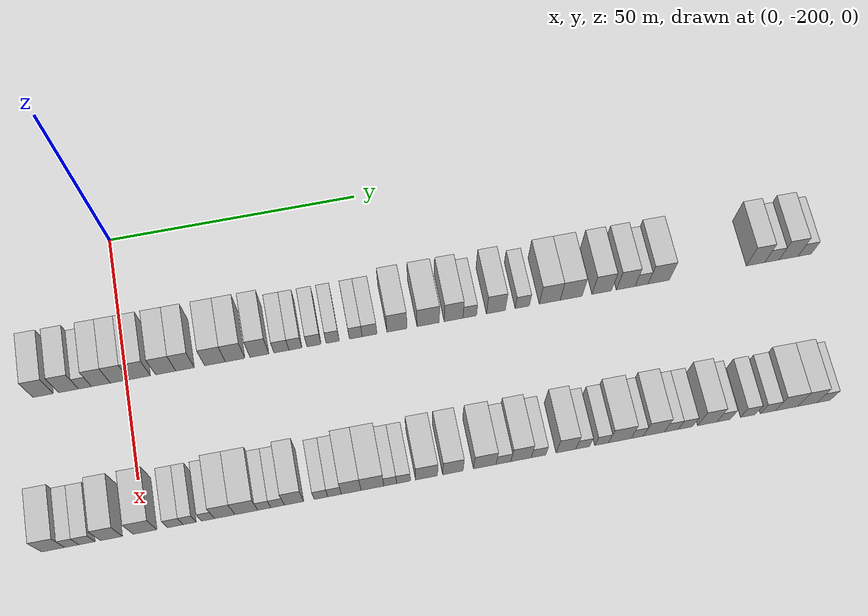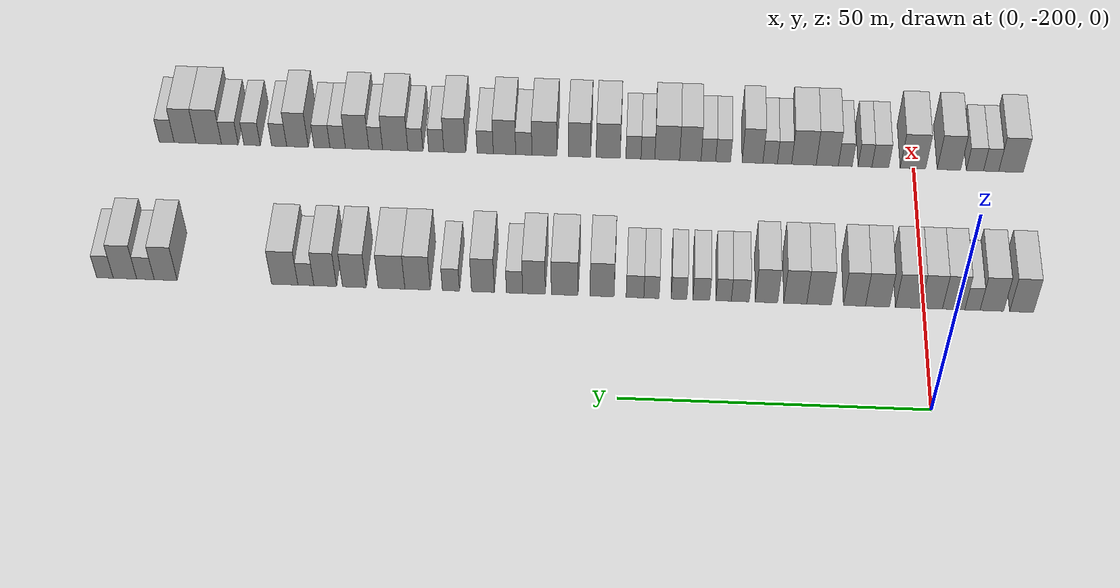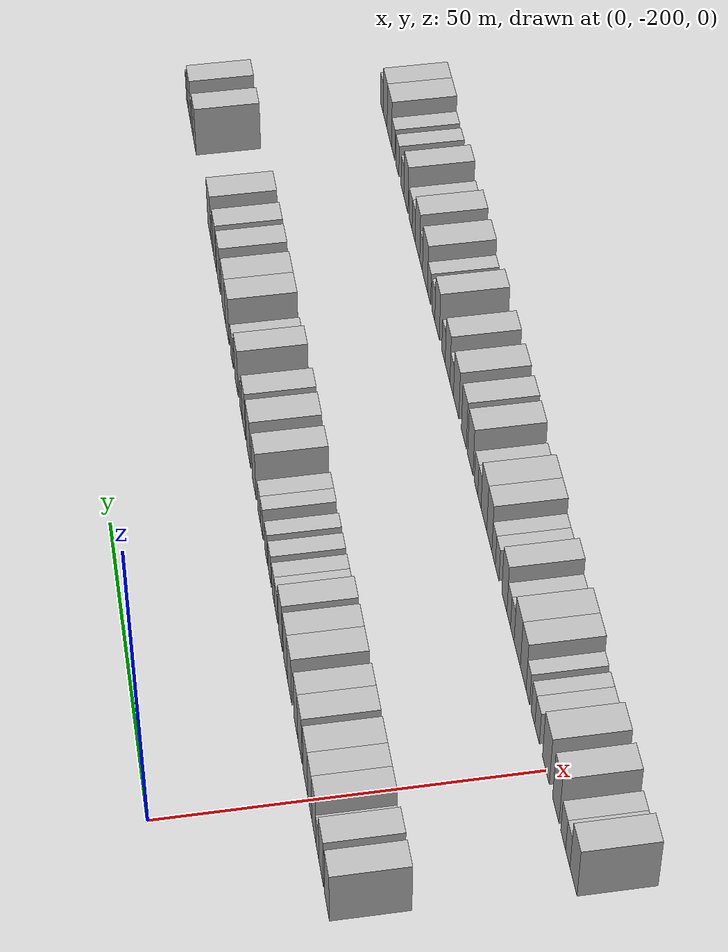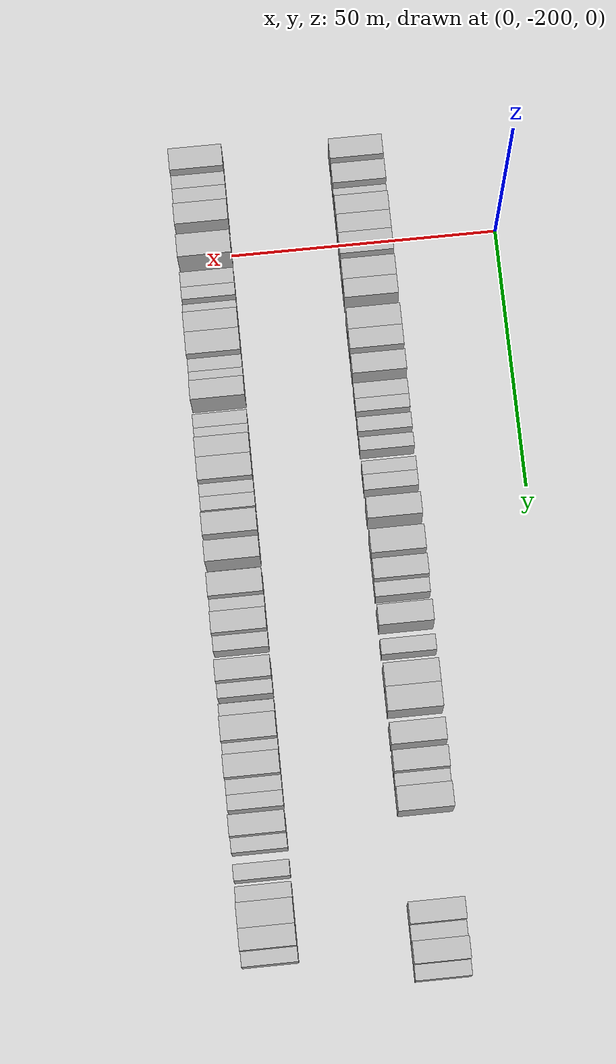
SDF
<sdf version="1.6">
 <world name="default">
  <model name="building_1">
   <static>1</static>
   <pose>25.0000 -216.0419 0 0.000000 0.000000 0.000000</pose>
   <link name="link">
    <pose>0 0 4.50 0 0 0</pose>
    <collision name="collision"><geometry><box><size>10.0000 3.9163 9.0000</size></box></geometry></collision>
    <visual name="visual">
     <cast_shadows>0</cast_shadows>
     <geometry><box><size>10.0000 3.9163 9.0000</size></box></geometry>
     <material>
      <script>
       <uri>model://HANNAS_wall/materials/scripts</uri>
       <uri>model://HANNAS_wall/materials/textures</uri>
       <name>vrc/HANNAS_wall</name>
      </script>
     </material>
    </visual>
   </link>
  </model>
  <model name="building_2">
   <static>1</static>
   <pose>25.0000 -211.1497 0 0.000000 0.000000 0.000000</pose>
   <link name="link">
    <pose>0 0 4.50 0 0 0</pose>
    <collision name="collision"><geometry><box><size>10.0000 3.8681 9.0000</size></box></geometry></collision>
    <visual name="visual">
     <cast_shadows>0</cast_shadows>
     <geometry><box><size>10.0000 3.8681 9.0000</size></box></geometry>
     <material>
      <script>
       <uri>model://HANNAS_wall/materials/scripts</uri>
       <uri>model://HANNAS_wall/materials/textures</uri>
       <name>vrc/HANNAS_wall</name>
      </script>
     </material>
    </visual>
   </link>
  </model>
  <model name="building_3">
   <static>1</static>
   <pose>25.0000 -207.9649 0 0.000000 0.000000 0.000000</pose>
   <link name="link">
    <pose>0 0 3.00 0 0 0</pose>
    <collision name="collision"><geometry><box><size>10.0000 2.5015 6.0000</size></box></geometry></collision>
    <visual name="visual">
     <cast_shadows>0</cast_shadows>
     <geometry><box><size>10.0000 2.5015 6.0000</size></box></geometry>
     <material>
      <script>
       <uri>model://HANNAS_wall/materials/scripts</uri>
       <uri>model://HANNAS_wall/materials/textures</uri>
       <name>vrc/HANNAS_wall</name>
      </script>
     </material>
    </visual>
   </link>
  </model>
  <model name="building_4">
   <static>1</static>
   <pose>25.0000 -204.8783 0 0.000000 0.000000 0.000000</pose>
   <link name="link">
    <pose>0 0 4.50 0 0 0</pose>
    <collision name="collision"><geometry><box><size>10.0000 3.6717 9.0000</size></box></geometry></collision>
    <visual name="visual">
     <cast_shadows>0</cast_shadows>
     <geometry><box><size>10.0000 3.6717 9.0000</size></box></geometry>
     <material>
      <script>
       <uri>model://HANNAS_wall/materials/scripts</uri>
       <uri>model://HANNAS_wall/materials/textures</uri>
       <name>vrc/HANNAS_wall</name>
      </script>
     </material>
    </visual>
   </link>
  </model>
  <model name="building_5">
   <static>1</static>
   <pose>25.0000 -201.2408 0 0.000000 0.000000 0.000000</pose>
   <link name="link">
    <pose>0 0 4.50 0 0 0</pose>
    <collision name="collision"><geometry><box><size>10.0000 3.6034 9.0000</size></box></geometry></collision>
    <visual name="visual">
     <cast_shadows>0</cast_shadows>
     <geometry><box><size>10.0000 3.6034 9.0000</size></box></geometry>
     <material>
      <script>
       <uri>model://HANNAS_wall/materials/scripts</uri>
       <uri>model://HANNAS_wall/materials/textures</uri>
       <name>vrc/HANNAS_wall</name>
      </script>
     </material>
    </visual>
   </link>
  </model>
  <model name="building_6">
   <static>1</static>
   <pose>25.0000 -197.3695 0 0.000000 0.000000 0.000000</pose>
   <link name="link">
    <pose>0 0 4.50 0 0 0</pose>
    <collision name="collision"><geometry><box><size>10.0000 4.1391 9.0000</size></box></geometry></collision>
    <visual name="visual">
     <cast_shadows>0</cast_shadows>
     <geometry><box><size>10.0000 4.1391 9.0000</size></box></geometry>
     <material>
      <script>
       <uri>model://HANNAS_wall/materials/scripts</uri>
       <uri>model://HANNAS_wall/materials/textures</uri>
       <name>vrc/HANNAS_wall</name>
      </script>
     </material>
    </visual>
   </link>
  </model>
  <model name="building_7">
   <static>1</static>
   <pose>25.0000 -192.3266 0 0.000000 0.000000 0.000000</pose>
   <link name="link">
    <pose>0 0 4.50 0 0 0</pose>
    <collision name="collision"><geometry><box><size>10.0000 3.9469 9.0000</size></box></geometry></collision>
    <visual name="visual">
     <cast_shadows>0</cast_shadows>
     <geometry><box><size>10.0000 3.9469 9.0000</size></box></geometry>
     <material>
      <script>
       <uri>model://HANNAS_wall/materials/scripts</uri>
       <uri>model://HANNAS_wall/materials/textures</uri>
       <name>vrc/HANNAS_wall</name>
      </script>
     </material>
    </visual>
   </link>
  </model>
  <model name="building_8">
   <static>1</static>
   <pose>25.0000 -188.5478 0 0.000000 0.000000 0.000000</pose>
   <link name="link">
    <pose>0 0 4.50 0 0 0</pose>
    <collision name="collision"><geometry><box><size>10.0000 3.6106 9.0000</size></box></geometry></collision>
    <visual name="visual">
     <cast_shadows>0</cast_shadows>
     <geometry><box><size>10.0000 3.6106 9.0000</size></box></geometry>
     <material>
      <script>
       <uri>model://HANNAS_wall/materials/scripts</uri>
       <uri>model://HANNAS_wall/materials/textures</uri>
       <name>vrc/HANNAS_wall</name>
      </script>
     </material>
    </visual>
   </link>
  </model>
  <model name="building_9">
   <static>1</static>
   <pose>25.0000 -182.7018 0 0.000000 0.000000 0.000000</pose>
   <link name="link">
    <pose>0 0 4.50 0 0 0</pose>
    <collision name="collision"><geometry><box><size>10.0000 4.0816 9.0000</size></box></geometry></collision>
    <visual name="visual">
     <cast_shadows>0</cast_shadows>
     <geometry><box><size>10.0000 4.0816 9.0000</size></box></geometry>
     <material>
      <script>
       <uri>model://HANNAS_wall/materials/scripts</uri>
       <uri>model://HANNAS_wall/materials/textures</uri>
       <name>vrc/HANNAS_wall</name>
      </script>
     </material>
    </visual>
   </link>
  </model>
  <model name="building_10">
   <static>1</static>
   <pose>25.0000 -178.7619 0 0.000000 0.000000 0.000000</pose>
   <link name="link">
    <pose>0 0 4.50 0 0 0</pose>
    <collision name="collision"><geometry><box><size>10.0000 3.7982 9.0000</size></box></geometry></collision>
    <visual name="visual">
     <cast_shadows>0</cast_shadows>
     <geometry><box><size>10.0000 3.7982 9.0000</size></box></geometry>
     <material>
      <script>
       <uri>model://HANNAS_wall/materials/scripts</uri>
       <uri>model://HANNAS_wall/materials/textures</uri>
       <name>vrc/HANNAS_wall</name>
      </script>
     </material>
    </visual>
   </link>
  </model>
  <model name="building_11">
   <static>1</static>
   <pose>25.0000 -174.0061 0 0.000000 0.000000 0.000000</pose>
   <link name="link">
    <pose>0 0 4.50 0 0 0</pose>
    <collision name="collision"><geometry><box><size>10.0000 3.7134 9.0000</size></box></geometry></collision>
    <visual name="visual">
     <cast_shadows>0</cast_shadows>
     <geometry><box><size>10.0000 3.7134 9.0000</size></box></geometry>
     <material>
      <script>
       <uri>model://HANNAS_wall/materials/scripts</uri>
       <uri>model://HANNAS_wall/materials/textures</uri>
       <name>vrc/HANNAS_wall</name>
      </script>
     </material>
    </visual>
   </link>
  </model>
  <model name="building_12">
   <static>1</static>
   <pose>25.0000 -169.6747 0 0.000000 0.000000 0.000000</pose>
   <link name="link">
    <pose>0 0 3.00 0 0 0</pose>
    <collision name="collision"><geometry><box><size>10.0000 2.9493 6.0000</size></box></geometry></collision>
    <visual name="visual">
     <cast_shadows>0</cast_shadows>
     <geometry><box><size>10.0000 2.9493 6.0000</size></box></geometry>
     <material>
      <script>
       <uri>model://HANNAS_wall/materials/scripts</uri>
       <uri>model://HANNAS_wall/materials/textures</uri>
       <name>vrc/HANNAS_wall</name>
      </script>
     </material>
    </visual>
   </link>
  </model>
  <model name="building_13">
   <static>1</static>
   <pose>25.0000 -166.9176 0 0.000000 0.000000 0.000000</pose>
   <link name="link">
    <pose>0 0 3.00 0 0 0</pose>
    <collision name="collision"><geometry><box><size>10.0000 2.5648 6.0000</size></box></geometry></collision>
    <visual name="visual">
     <cast_shadows>0</cast_shadows>
     <geometry><box><size>10.0000 2.5648 6.0000</size></box></geometry>
     <material>
      <script>
       <uri>model://HANNAS_wall/materials/scripts</uri>
       <uri>model://HANNAS_wall/materials/textures</uri>
       <name>vrc/HANNAS_wall</name>
      </script>
     </material>
    </visual>
   </link>
  </model>
  <model name="building_14">
   <static>1</static>
   <pose>25.0000 -163.2379 0 0.000000 0.000000 0.000000</pose>
   <link name="link">
    <pose>0 0 3.00 0 0 0</pose>
    <collision name="collision"><geometry><box><size>10.0000 2.7948 6.0000</size></box></geometry></collision>
    <visual name="visual">
     <cast_shadows>0</cast_shadows>
     <geometry><box><size>10.0000 2.7948 6.0000</size></box></geometry>
     <material>
      <script>
       <uri>model://HANNAS_wall/materials/scripts</uri>
       <uri>model://HANNAS_wall/materials/textures</uri>
       <name>vrc/HANNAS_wall</name>
      </script>
     </material>
    </visual>
   </link>
  </model>
  <model name="building_15">
   <static>1</static>
   <pose>25.0000 -159.5439 0 0.000000 0.000000 0.000000</pose>
   <link name="link">
    <pose>0 0 3.00 0 0 0</pose>
    <collision name="collision"><geometry><box><size>10.0000 2.5931 6.0000</size></box></geometry></collision>
    <visual name="visual">
     <cast_shadows>0</cast_shadows>
     <geometry><box><size>10.0000 2.5931 6.0000</size></box></geometry>
     <material>
      <script>
       <uri>model://HANNAS_wall/materials/scripts</uri>
       <uri>model://HANNAS_wall/materials/textures</uri>
       <name>vrc/HANNAS_wall</name>
      </script>
     </material>
    </visual>
   </link>
  </model>
  <model name="building_16">
   <static>1</static>
   <pose>25.0000 -154.9799 0 0.000000 0.000000 0.000000</pose>
   <link name="link">
    <pose>0 0 3.00 0 0 0</pose>
    <collision name="collision"><geometry><box><size>10.0000 2.5349 6.0000</size></box></geometry></collision>
    <visual name="visual">
     <cast_shadows>0</cast_shadows>
     <geometry><box><size>10.0000 2.5349 6.0000</size></box></geometry>
     <material>
      <script>
       <uri>model://HANNAS_wall/materials/scripts</uri>
       <uri>model://HANNAS_wall/materials/textures</uri>
       <name>vrc/HANNAS_wall</name>
      </script>
     </material>
    </visual>
   </link>
  </model>
  <model name="building_17">
   <static>1</static>
   <pose>25.0000 -152.2463 0 0.000000 0.000000 0.000000</pose>
   <link name="link">
    <pose>0 0 3.00 0 0 0</pose>
    <collision name="collision"><geometry><box><size>10.0000 2.9323 6.0000</size></box></geometry></collision>
    <visual name="visual">
     <cast_shadows>0</cast_shadows>
     <geometry><box><size>10.0000 2.9323 6.0000</size></box></geometry>
     <material>
      <script>
       <uri>model://HANNAS_wall/materials/scripts</uri>
       <uri>model://HANNAS_wall/materials/textures</uri>
       <name>vrc/HANNAS_wall</name>
      </script>
     </material>
    </visual>
   </link>
  </model>
  <model name="building_18">
   <static>1</static>
   <pose>25.0000 -146.7901 0 0.000000 0.000000 0.000000</pose>
   <link name="link">
    <pose>0 0 4.50 0 0 0</pose>
    <collision name="collision"><geometry><box><size>10.0000 3.9801 9.0000</size></box></geometry></collision>
    <visual name="visual">
     <cast_shadows>0</cast_shadows>
     <geometry><box><size>10.0000 3.9801 9.0000</size></box></geometry>
     <material>
      <script>
       <uri>model://HANNAS_wall/materials/scripts</uri>
       <uri>model://HANNAS_wall/materials/textures</uri>
       <name>vrc/HANNAS_wall</name>
      </script>
     </material>
    </visual>
   </link>
  </model>
  <model name="building_19">
   <static>1</static>
   <pose>25.0000 -140.5800 0 0.000000 0.000000 0.000000</pose>
   <link name="link">
    <pose>0 0 4.50 0 0 0</pose>
    <collision name="collision"><geometry><box><size>10.0000 4.4402 9.0000</size></box></geometry></collision>
    <visual name="visual">
     <cast_shadows>0</cast_shadows>
     <geometry><box><size>10.0000 4.4402 9.0000</size></box></geometry>
     <material>
      <script>
       <uri>model://HANNAS_wall/materials/scripts</uri>
       <uri>model://HANNAS_wall/materials/textures</uri>
       <name>vrc/HANNAS_wall</name>
      </script>
     </material>
    </visual>
   </link>
  </model>
  <model name="building_20">
   <static>1</static>
   <pose>25.0000 -135.4775 0 0.000000 0.000000 0.000000</pose>
   <link name="link">
    <pose>0 0 4.50 0 0 0</pose>
    <collision name="collision"><geometry><box><size>10.0000 3.7648 9.0000</size></box></geometry></collision>
    <visual name="visual">
     <cast_shadows>0</cast_shadows>
     <geometry><box><size>10.0000 3.7648 9.0000</size></box></geometry>
     <material>
      <script>
       <uri>model://HANNAS_wall/materials/scripts</uri>
       <uri>model://HANNAS_wall/materials/textures</uri>
       <name>vrc/HANNAS_wall</name>
      </script>
     </material>
    </visual>
   </link>
  </model>
  <model name="building_21">
   <static>1</static>
   <pose>25.0000 -132.2406 0 0.000000 0.000000 0.000000</pose>
   <link name="link">
    <pose>0 0 3.00 0 0 0</pose>
    <collision name="collision"><geometry><box><size>10.0000 2.7090 6.0000</size></box></geometry></collision>
    <visual name="visual">
     <cast_shadows>0</cast_shadows>
     <geometry><box><size>10.0000 2.7090 6.0000</size></box></geometry>
     <material>
      <script>
       <uri>model://HANNAS_wall/materials/scripts</uri>
       <uri>model://HANNAS_wall/materials/textures</uri>
       <name>vrc/HANNAS_wall</name>
      </script>
     </material>
    </visual>
   </link>
  </model>
  <model name="building_22">
   <static>1</static>
   <pose>25.0000 -126.9891 0 0.000000 0.000000 0.000000</pose>
   <link name="link">
    <pose>0 0 4.50 0 0 0</pose>
    <collision name="collision"><geometry><box><size>10.0000 3.7940 9.0000</size></box></geometry></collision>
    <visual name="visual">
     <cast_shadows>0</cast_shadows>
     <geometry><box><size>10.0000 3.7940 9.0000</size></box></geometry>
     <material>
      <script>
       <uri>model://HANNAS_wall/materials/scripts</uri>
       <uri>model://HANNAS_wall/materials/textures</uri>
       <name>vrc/HANNAS_wall</name>
      </script>
     </material>
    </visual>
   </link>
  </model>
  <model name="building_23">
   <static>1</static>
   <pose>25.0000 -121.6589 0 0.000000 0.000000 0.000000</pose>
   <link name="link">
    <pose>0 0 3.00 0 0 0</pose>
    <collision name="collision"><geometry><box><size>10.0000 2.8664 6.0000</size></box></geometry></collision>
    <visual name="visual">
     <cast_shadows>0</cast_shadows>
     <geometry><box><size>10.0000 2.8664 6.0000</size></box></geometry>
     <material>
      <script>
       <uri>model://HANNAS_wall/materials/scripts</uri>
       <uri>model://HANNAS_wall/materials/textures</uri>
       <name>vrc/HANNAS_wall</name>
      </script>
     </material>
    </visual>
   </link>
  </model>
  <model name="building_24">
   <static>1</static>
   <pose>25.0000 -116.0984 0 0.000000 0.000000 0.000000</pose>
   <link name="link">
    <pose>0 0 4.50 0 0 0</pose>
    <collision name="collision"><geometry><box><size>10.0000 4.2546 9.0000</size></box></geometry></collision>
    <visual name="visual">
     <cast_shadows>0</cast_shadows>
     <geometry><box><size>10.0000 4.2546 9.0000</size></box></geometry>
     <material>
      <script>
       <uri>model://HANNAS_wall/materials/scripts</uri>
       <uri>model://HANNAS_wall/materials/textures</uri>
       <name>vrc/HANNAS_wall</name>
      </script>
     </material>
    </visual>
   </link>
  </model>
  <model name="building_25">
   <static>1</static>
   <pose>25.0000 -111.7449 0 0.000000 0.000000 0.000000</pose>
   <link name="link">
    <pose>0 0 4.50 0 0 0</pose>
    <collision name="collision"><geometry><box><size>10.0000 4.4524 9.0000</size></box></geometry></collision>
    <visual name="visual">
     <cast_shadows>0</cast_shadows>
     <geometry><box><size>10.0000 4.4524 9.0000</size></box></geometry>
     <material>
      <script>
       <uri>model://HANNAS_wall/materials/scripts</uri>
       <uri>model://HANNAS_wall/materials/textures</uri>
       <name>vrc/HANNAS_wall</name>
      </script>
     </material>
    </visual>
   </link>
  </model>
  <model name="building_26">
   <static>1</static>
   <pose>25.0000 -105.5380 0 0.000000 0.000000 0.000000</pose>
   <link name="link">
    <pose>0 0 4.50 0 0 0</pose>
    <collision name="collision"><geometry><box><size>10.0000 3.9613 9.0000</size></box></geometry></collision>
    <visual name="visual">
     <cast_shadows>0</cast_shadows>
     <geometry><box><size>10.0000 3.9613 9.0000</size></box></geometry>
     <material>
      <script>
       <uri>model://HANNAS_wall/materials/scripts</uri>
       <uri>model://HANNAS_wall/materials/textures</uri>
       <name>vrc/HANNAS_wall</name>
      </script>
     </material>
    </visual>
   </link>
  </model>
  <model name="building_27">
   <static>1</static>
   <pose>25.0000 -100.6645 0 0.000000 0.000000 0.000000</pose>
   <link name="link">
    <pose>0 0 4.50 0 0 0</pose>
    <collision name="collision"><geometry><box><size>10.0000 3.7857 9.0000</size></box></geometry></collision>
    <visual name="visual">
     <cast_shadows>0</cast_shadows>
     <geometry><box><size>10.0000 3.7857 9.0000</size></box></geometry>
     <material>
      <script>
       <uri>model://HANNAS_wall/materials/scripts</uri>
       <uri>model://HANNAS_wall/materials/textures</uri>
       <name>vrc/HANNAS_wall</name>
      </script>
     </material>
    </visual>
   </link>
  </model>
  <model name="building_28">
   <static>1</static>
   <pose>25.0000 -97.4327 0 0.000000 0.000000 0.000000</pose>
   <link name="link">
    <pose>0 0 3.00 0 0 0</pose>
    <collision name="collision"><geometry><box><size>10.0000 2.6779 6.0000</size></box></geometry></collision>
    <visual name="visual">
     <cast_shadows>0</cast_shadows>
     <geometry><box><size>10.0000 2.6779 6.0000</size></box></geometry>
     <material>
      <script>
       <uri>model://HANNAS_wall/materials/scripts</uri>
       <uri>model://HANNAS_wall/materials/textures</uri>
       <name>vrc/HANNAS_wall</name>
      </script>
     </material>
    </visual>
   </link>
  </model>
  <model name="building_29">
   <static>1</static>
   <pose>25.0000 -93.8877 0 0.000000 0.000000 0.000000</pose>
   <link name="link">
    <pose>0 0 4.50 0 0 0</pose>
    <collision name="collision"><geometry><box><size>10.0000 4.4122 9.0000</size></box></geometry></collision>
    <visual name="visual">
     <cast_shadows>0</cast_shadows>
     <geometry><box><size>10.0000 4.4122 9.0000</size></box></geometry>
     <material>
      <script>
       <uri>model://HANNAS_wall/materials/scripts</uri>
       <uri>model://HANNAS_wall/materials/textures</uri>
       <name>vrc/HANNAS_wall</name>
      </script>
     </material>
    </visual>
   </link>
  </model>
  <model name="building_30">
   <static>1</static>
   <pose>25.0000 -73.9153 0 0.000000 0.000000 0.000000</pose>
   <link name="link">
    <pose>0 0 4.50 0 0 0</pose>
    <collision name="collision"><geometry><box><size>10.0000 3.8442 9.0000</size></box></geometry></collision>
    <visual name="visual">
     <cast_shadows>0</cast_shadows>
     <geometry><box><size>10.0000 3.8442 9.0000</size></box></geometry>
     <material>
      <script>
       <uri>model://HANNAS_wall/materials/scripts</uri>
       <uri>model://HANNAS_wall/materials/textures</uri>
       <name>vrc/HANNAS_wall</name>
      </script>
     </material>
    </visual>
   </link>
  </model>
  <model name="building_31">
   <static>1</static>
   <pose>25.0000 -70.5167 0 0.000000 0.000000 0.000000</pose>
   <link name="link">
    <pose>0 0 3.00 0 0 0</pose>
    <collision name="collision"><geometry><box><size>10.0000 2.9530 6.0000</size></box></geometry></collision>
    <visual name="visual">
     <cast_shadows>0</cast_shadows>
     <geometry><box><size>10.0000 2.9530 6.0000</size></box></geometry>
     <material>
      <script>
       <uri>model://HANNAS_wall/materials/scripts</uri>
       <uri>model://HANNAS_wall/materials/textures</uri>
       <name>vrc/HANNAS_wall</name>
      </script>
     </material>
    </visual>
   </link>
  </model>
  <model name="building_32">
   <static>1</static>
   <pose>25.0000 -67.0699 0 0.000000 0.000000 0.000000</pose>
   <link name="link">
    <pose>0 0 4.50 0 0 0</pose>
    <collision name="collision"><geometry><box><size>10.0000 3.9406 9.0000</size></box></geometry></collision>
    <visual name="visual">
     <cast_shadows>0</cast_shadows>
     <geometry><box><size>10.0000 3.9406 9.0000</size></box></geometry>
     <material>
      <script>
       <uri>model://HANNAS_wall/materials/scripts</uri>
       <uri>model://HANNAS_wall/materials/textures</uri>
       <name>vrc/HANNAS_wall</name>
      </script>
     </material>
    </visual>
   </link>
  </model>
  <model name="building_33">
   <static>1</static>
   <pose>25.0000 -63.7086 0 0.000000 0.000000 0.000000</pose>
   <link name="link">
    <pose>0 0 3.00 0 0 0</pose>
    <collision name="collision"><geometry><box><size>10.0000 2.7819 6.0000</size></box></geometry></collision>
    <visual name="visual">
     <cast_shadows>0</cast_shadows>
     <geometry><box><size>10.0000 2.7819 6.0000</size></box></geometry>
     <material>
      <script>
       <uri>model://HANNAS_wall/materials/scripts</uri>
       <uri>model://HANNAS_wall/materials/textures</uri>
       <name>vrc/HANNAS_wall</name>
      </script>
     </material>
    </visual>
   </link>
  </model>
  <model name="building_110">
   <static>1</static>
   <pose>55.0000 -216.8763 0 0.000000 0.000000 0.000000</pose>
   <link name="link">
    <pose>0 0 4.50 0 0 0</pose>
    <collision name="collision"><geometry><box><size>10.0000 4.2474 9.0000</size></box></geometry></collision>
    <visual name="visual">
     <cast_shadows>0</cast_shadows>
     <geometry><box><size>10.0000 4.2474 9.0000</size></box></geometry>
     <material>
      <script>
       <uri>model://HANNAS_wall/materials/scripts</uri>
       <uri>model://HANNAS_wall/materials/textures</uri>
       <name>vrc/HANNAS_wall</name>
      </script>
     </material>
    </visual>
   </link>
  </model>
  <model name="building_111">
   <static>1</static>
   <pose>55.0000 -213.4412 0 0.000000 0.000000 0.000000</pose>
   <link name="link">
    <pose>0 0 3.00 0 0 0</pose>
    <collision name="collision"><geometry><box><size>10.0000 2.6228 6.0000</size></box></geometry></collision>
    <visual name="visual">
     <cast_shadows>0</cast_shadows>
     <geometry><box><size>10.0000 2.6228 6.0000</size></box></geometry>
     <material>
      <script>
       <uri>model://HANNAS_wall/materials/scripts</uri>
       <uri>model://HANNAS_wall/materials/textures</uri>
       <name>vrc/HANNAS_wall</name>
      </script>
     </material>
    </visual>
   </link>
  </model>
  <model name="building_112">
   <static>1</static>
   <pose>55.0000 -210.6367 0 0.000000 0.000000 0.000000</pose>
   <link name="link">
    <pose>0 0 3.00 0 0 0</pose>
    <collision name="collision"><geometry><box><size>10.0000 2.9863 6.0000</size></box></geometry></collision>
    <visual name="visual">
     <cast_shadows>0</cast_shadows>
     <geometry><box><size>10.0000 2.9863 6.0000</size></box></geometry>
     <material>
      <script>
       <uri>model://HANNAS_wall/materials/scripts</uri>
       <uri>model://HANNAS_wall/materials/textures</uri>
       <name>vrc/HANNAS_wall</name>
      </script>
     </material>
    </visual>
   </link>
  </model>
  <model name="building_113">
   <static>1</static>
   <pose>55.0000 -206.1159 0 0.000000 0.000000 0.000000</pose>
   <link name="link">
    <pose>0 0 4.50 0 0 0</pose>
    <collision name="collision"><geometry><box><size>10.0000 4.0554 9.0000</size></box></geometry></collision>
    <visual name="visual">
     <cast_shadows>0</cast_shadows>
     <geometry><box><size>10.0000 4.0554 9.0000</size></box></geometry>
     <material>
      <script>
       <uri>model://HANNAS_wall/materials/scripts</uri>
       <uri>model://HANNAS_wall/materials/textures</uri>
       <name>vrc/HANNAS_wall</name>
      </script>
     </material>
    </visual>
   </link>
  </model>
  <model name="building_114">
   <static>1</static>
   <pose>55.0000 -199.8830 0 0.000000 0.000000 0.000000</pose>
   <link name="link">
    <pose>0 0 4.50 0 0 0</pose>
    <collision name="collision"><geometry><box><size>10.0000 4.4104 9.0000</size></box></geometry></collision>
    <visual name="visual">
     <cast_shadows>0</cast_shadows>
     <geometry><box><size>10.0000 4.4104 9.0000</size></box></geometry>
     <material>
      <script>
       <uri>model://HANNAS_wall/materials/scripts</uri>
       <uri>model://HANNAS_wall/materials/textures</uri>
       <name>vrc/HANNAS_wall</name>
      </script>
     </material>
    </visual>
   </link>
  </model>
  <model name="building_115">
   <static>1</static>
   <pose>55.0000 -194.2160 0 0.000000 0.000000 0.000000</pose>
   <link name="link">
    <pose>0 0 3.00 0 0 0</pose>
    <collision name="collision"><geometry><box><size>10.0000 2.9236 6.0000</size></box></geometry></collision>
    <visual name="visual">
     <cast_shadows>0</cast_shadows>
     <geometry><box><size>10.0000 2.9236 6.0000</size></box></geometry>
     <material>
      <script>
       <uri>model://HANNAS_wall/materials/scripts</uri>
       <uri>model://HANNAS_wall/materials/textures</uri>
       <name>vrc/HANNAS_wall</name>
      </script>
     </material>
    </visual>
   </link>
  </model>
  <model name="building_116">
   <static>1</static>
   <pose>55.0000 -191.5484 0 0.000000 0.000000 0.000000</pose>
   <link name="link">
    <pose>0 0 3.00 0 0 0</pose>
    <collision name="collision"><geometry><box><size>10.0000 2.4114 6.0000</size></box></geometry></collision>
    <visual name="visual">
     <cast_shadows>0</cast_shadows>
     <geometry><box><size>10.0000 2.4114 6.0000</size></box></geometry>
     <material>
      <script>
       <uri>model://HANNAS_wall/materials/scripts</uri>
       <uri>model://HANNAS_wall/materials/textures</uri>
       <name>vrc/HANNAS_wall</name>
      </script>
     </material>
    </visual>
   </link>
  </model>
  <model name="building_117">
   <static>1</static>
   <pose>55.0000 -188.1269 0 0.000000 0.000000 0.000000</pose>
   <link name="link">
    <pose>0 0 3.00 0 0 0</pose>
    <collision name="collision"><geometry><box><size>10.0000 2.4316 6.0000</size></box></geometry></collision>
    <visual name="visual">
     <cast_shadows>0</cast_shadows>
     <geometry><box><size>10.0000 2.4316 6.0000</size></box></geometry>
     <material>
      <script>
       <uri>model://HANNAS_wall/materials/scripts</uri>
       <uri>model://HANNAS_wall/materials/textures</uri>
       <name>vrc/HANNAS_wall</name>
      </script>
     </material>
    </visual>
   </link>
  </model>
  <model name="building_118">
   <static>1</static>
   <pose>55.0000 -184.9866 0 0.000000 0.000000 0.000000</pose>
   <link name="link">
    <pose>0 0 4.50 0 0 0</pose>
    <collision name="collision"><geometry><box><size>10.0000 3.8489 9.0000</size></box></geometry></collision>
    <visual name="visual">
     <cast_shadows>0</cast_shadows>
     <geometry><box><size>10.0000 3.8489 9.0000</size></box></geometry>
     <material>
      <script>
       <uri>model://HANNAS_wall/materials/scripts</uri>
       <uri>model://HANNAS_wall/materials/textures</uri>
       <name>vrc/HANNAS_wall</name>
      </script>
     </material>
    </visual>
   </link>
  </model>
  <model name="building_119">
   <static>1</static>
   <pose>55.0000 -180.9221 0 0.000000 0.000000 0.000000</pose>
   <link name="link">
    <pose>0 0 4.50 0 0 0</pose>
    <collision name="collision"><geometry><box><size>10.0000 4.2803 9.0000</size></box></geometry></collision>
    <visual name="visual">
     <cast_shadows>0</cast_shadows>
     <geometry><box><size>10.0000 4.2803 9.0000</size></box></geometry>
     <material>
      <script>
       <uri>model://HANNAS_wall/materials/scripts</uri>
       <uri>model://HANNAS_wall/materials/textures</uri>
       <name>vrc/HANNAS_wall</name>
      </script>
     </material>
    </visual>
   </link>
  </model>
  <model name="building_120">
   <static>1</static>
   <pose>55.0000 -177.5416 0 0.000000 0.000000 0.000000</pose>
   <link name="link">
    <pose>0 0 3.00 0 0 0</pose>
    <collision name="collision"><geometry><box><size>10.0000 2.4807 6.0000</size></box></geometry></collision>
    <visual name="visual">
     <cast_shadows>0</cast_shadows>
     <geometry><box><size>10.0000 2.4807 6.0000</size></box></geometry>
     <material>
      <script>
       <uri>model://HANNAS_wall/materials/scripts</uri>
       <uri>model://HANNAS_wall/materials/textures</uri>
       <name>vrc/HANNAS_wall</name>
      </script>
     </material>
    </visual>
   </link>
  </model>
  <model name="building_121">
   <static>1</static>
   <pose>55.0000 -175.0378 0 0.000000 0.000000 0.000000</pose>
   <link name="link">
    <pose>0 0 3.00 0 0 0</pose>
    <collision name="collision"><geometry><box><size>10.0000 2.5269 6.0000</size></box></geometry></collision>
    <visual name="visual">
     <cast_shadows>0</cast_shadows>
     <geometry><box><size>10.0000 2.5269 6.0000</size></box></geometry>
     <material>
      <script>
       <uri>model://HANNAS_wall/materials/scripts</uri>
       <uri>model://HANNAS_wall/materials/textures</uri>
       <name>vrc/HANNAS_wall</name>
      </script>
     </material>
    </visual>
   </link>
  </model>
  <model name="building_122">
   <static>1</static>
   <pose>55.0000 -171.9593 0 0.000000 0.000000 0.000000</pose>
   <link name="link">
    <pose>0 0 4.50 0 0 0</pose>
    <collision name="collision"><geometry><box><size>10.0000 3.6302 9.0000</size></box></geometry></collision>
    <visual name="visual">
     <cast_shadows>0</cast_shadows>
     <geometry><box><size>10.0000 3.6302 9.0000</size></box></geometry>
     <material>
      <script>
       <uri>model://HANNAS_wall/materials/scripts</uri>
       <uri>model://HANNAS_wall/materials/textures</uri>
       <name>vrc/HANNAS_wall</name>
      </script>
     </material>
    </visual>
   </link>
  </model>
  <model name="building_123">
   <static>1</static>
   <pose>55.0000 -166.8445 0 0.000000 0.000000 0.000000</pose>
   <link name="link">
    <pose>0 0 3.00 0 0 0</pose>
    <collision name="collision"><geometry><box><size>10.0000 2.5993 6.0000</size></box></geometry></collision>
    <visual name="visual">
     <cast_shadows>0</cast_shadows>
     <geometry><box><size>10.0000 2.5993 6.0000</size></box></geometry>
     <material>
      <script>
       <uri>model://HANNAS_wall/materials/scripts</uri>
       <uri>model://HANNAS_wall/materials/textures</uri>
       <name>vrc/HANNAS_wall</name>
      </script>
     </material>
    </visual>
   </link>
  </model>
  <model name="building_124">
   <static>1</static>
   <pose>55.0000 -164.2656 0 0.000000 0.000000 0.000000</pose>
   <link name="link">
    <pose>0 0 3.00 0 0 0</pose>
    <collision name="collision"><geometry><box><size>10.0000 2.5586 6.0000</size></box></geometry></collision>
    <visual name="visual">
     <cast_shadows>0</cast_shadows>
     <geometry><box><size>10.0000 2.5586 6.0000</size></box></geometry>
     <material>
      <script>
       <uri>model://HANNAS_wall/materials/scripts</uri>
       <uri>model://HANNAS_wall/materials/textures</uri>
       <name>vrc/HANNAS_wall</name>
      </script>
     </material>
    </visual>
   </link>
  </model>
  <model name="building_125">
   <static>1</static>
   <pose>55.0000 -161.1176 0 0.000000 0.000000 0.000000</pose>
   <link name="link">
    <pose>0 0 4.50 0 0 0</pose>
    <collision name="collision"><geometry><box><size>10.0000 3.7374 9.0000</size></box></geometry></collision>
    <visual name="visual">
     <cast_shadows>0</cast_shadows>
     <geometry><box><size>10.0000 3.7374 9.0000</size></box></geometry>
     <material>
      <script>
       <uri>model://HANNAS_wall/materials/scripts</uri>
       <uri>model://HANNAS_wall/materials/textures</uri>
       <name>vrc/HANNAS_wall</name>
      </script>
     </material>
    </visual>
   </link>
  </model>
  <model name="building_126">
   <static>1</static>
   <pose>55.0000 -157.0843 0 0.000000 0.000000 0.000000</pose>
   <link name="link">
    <pose>0 0 4.50 0 0 0</pose>
    <collision name="collision"><geometry><box><size>10.0000 4.3291 9.0000</size></box></geometry></collision>
    <visual name="visual">
     <cast_shadows>0</cast_shadows>
     <geometry><box><size>10.0000 4.3291 9.0000</size></box></geometry>
     <material>
      <script>
       <uri>model://HANNAS_wall/materials/scripts</uri>
       <uri>model://HANNAS_wall/materials/textures</uri>
       <name>vrc/HANNAS_wall</name>
      </script>
     </material>
    </visual>
   </link>
  </model>
  <model name="building_127">
   <static>1</static>
   <pose>55.0000 -153.7164 0 0.000000 0.000000 0.000000</pose>
   <link name="link">
    <pose>0 0 3.00 0 0 0</pose>
    <collision name="collision"><geometry><box><size>10.0000 2.4066 6.0000</size></box></geometry></collision>
    <visual name="visual">
     <cast_shadows>0</cast_shadows>
     <geometry><box><size>10.0000 2.4066 6.0000</size></box></geometry>
     <material>
      <script>
       <uri>model://HANNAS_wall/materials/scripts</uri>
       <uri>model://HANNAS_wall/materials/textures</uri>
       <name>vrc/HANNAS_wall</name>
      </script>
     </material>
    </visual>
   </link>
  </model>
  <model name="building_128">
   <static>1</static>
   <pose>55.0000 -151.1873 0 0.000000 0.000000 0.000000</pose>
   <link name="link">
    <pose>0 0 3.00 0 0 0</pose>
    <collision name="collision"><geometry><box><size>10.0000 2.6517 6.0000</size></box></geometry></collision>
    <visual name="visual">
     <cast_shadows>0</cast_shadows>
     <geometry><box><size>10.0000 2.6517 6.0000</size></box></geometry>
     <material>
      <script>
       <uri>model://HANNAS_wall/materials/scripts</uri>
       <uri>model://HANNAS_wall/materials/textures</uri>
       <name>vrc/HANNAS_wall</name>
      </script>
     </material>
    </visual>
   </link>
  </model>
  <model name="building_129">
   <static>1</static>
   <pose>55.0000 -146.7681 0 0.000000 0.000000 0.000000</pose>
   <link name="link">
    <pose>0 0 4.50 0 0 0</pose>
    <collision name="collision"><geometry><box><size>10.0000 4.1867 9.0000</size></box></geometry></collision>
    <visual name="visual">
     <cast_shadows>0</cast_shadows>
     <geometry><box><size>10.0000 4.1867 9.0000</size></box></geometry>
     <material>
      <script>
       <uri>model://HANNAS_wall/materials/scripts</uri>
       <uri>model://HANNAS_wall/materials/textures</uri>
       <name>vrc/HANNAS_wall</name>
      </script>
     </material>
    </visual>
   </link>
  </model>
  <model name="building_130">
   <static>1</static>
   <pose>55.0000 -141.7245 0 0.000000 0.000000 0.000000</pose>
   <link name="link">
    <pose>0 0 4.50 0 0 0</pose>
    <collision name="collision"><geometry><box><size>10.0000 3.9005 9.0000</size></box></geometry></collision>
    <visual name="visual">
     <cast_shadows>0</cast_shadows>
     <geometry><box><size>10.0000 3.9005 9.0000</size></box></geometry>
     <material>
      <script>
       <uri>model://HANNAS_wall/materials/scripts</uri>
       <uri>model://HANNAS_wall/materials/textures</uri>
       <name>vrc/HANNAS_wall</name>
      </script>
     </material>
    </visual>
   </link>
  </model>
  <model name="building_131">
   <static>1</static>
   <pose>55.0000 -135.5959 0 0.000000 0.000000 0.000000</pose>
   <link name="link">
    <pose>0 0 4.50 0 0 0</pose>
    <collision name="collision"><geometry><box><size>10.0000 4.3566 9.0000</size></box></geometry></collision>
    <visual name="visual">
     <cast_shadows>0</cast_shadows>
     <geometry><box><size>10.0000 4.3566 9.0000</size></box></geometry>
     <material>
      <script>
       <uri>model://HANNAS_wall/materials/scripts</uri>
       <uri>model://HANNAS_wall/materials/textures</uri>
       <name>vrc/HANNAS_wall</name>
      </script>
     </material>
    </visual>
   </link>
  </model>
  <model name="building_132">
   <static>1</static>
   <pose>55.0000 -131.9917 0 0.000000 0.000000 0.000000</pose>
   <link name="link">
    <pose>0 0 3.00 0 0 0</pose>
    <collision name="collision"><geometry><box><size>10.0000 2.8517 6.0000</size></box></geometry></collision>
    <visual name="visual">
     <cast_shadows>0</cast_shadows>
     <geometry><box><size>10.0000 2.8517 6.0000</size></box></geometry>
     <material>
      <script>
       <uri>model://HANNAS_wall/materials/scripts</uri>
       <uri>model://HANNAS_wall/materials/textures</uri>
       <name>vrc/HANNAS_wall</name>
      </script>
     </material>
    </visual>
   </link>
  </model>
  <model name="building_133">
   <static>1</static>
   <pose>55.0000 -128.6016 0 0.000000 0.000000 0.000000</pose>
   <link name="link">
    <pose>0 0 4.50 0 0 0</pose>
    <collision name="collision"><geometry><box><size>10.0000 3.9286 9.0000</size></box></geometry></collision>
    <visual name="visual">
     <cast_shadows>0</cast_shadows>
     <geometry><box><size>10.0000 3.9286 9.0000</size></box></geometry>
     <material>
      <script>
       <uri>model://HANNAS_wall/materials/scripts</uri>
       <uri>model://HANNAS_wall/materials/textures</uri>
       <name>vrc/HANNAS_wall</name>
      </script>
     </material>
    </visual>
   </link>
  </model>
  <model name="building_134">
   <static>1</static>
   <pose>55.0000 -125.2140 0 0.000000 0.000000 0.000000</pose>
   <link name="link">
    <pose>0 0 3.00 0 0 0</pose>
    <collision name="collision"><geometry><box><size>10.0000 2.8466 6.0000</size></box></geometry></collision>
    <visual name="visual">
     <cast_shadows>0</cast_shadows>
     <geometry><box><size>10.0000 2.8466 6.0000</size></box></geometry>
     <material>
      <script>
       <uri>model://HANNAS_wall/materials/scripts</uri>
       <uri>model://HANNAS_wall/materials/textures</uri>
       <name>vrc/HANNAS_wall</name>
      </script>
     </material>
    </visual>
   </link>
  </model>
  <model name="building_135">
   <static>1</static>
   <pose>55.0000 -119.8670 0 0.000000 0.000000 0.000000</pose>
   <link name="link">
    <pose>0 0 4.50 0 0 0</pose>
    <collision name="collision"><geometry><box><size>10.0000 3.8474 9.0000</size></box></geometry></collision>
    <visual name="visual">
     <cast_shadows>0</cast_shadows>
     <geometry><box><size>10.0000 3.8474 9.0000</size></box></geometry>
     <material>
      <script>
       <uri>model://HANNAS_wall/materials/scripts</uri>
       <uri>model://HANNAS_wall/materials/textures</uri>
       <name>vrc/HANNAS_wall</name>
      </script>
     </material>
    </visual>
   </link>
  </model>
  <model name="building_136">
   <static>1</static>
   <pose>55.0000 -116.6100 0 0.000000 0.000000 0.000000</pose>
   <link name="link">
    <pose>0 0 3.00 0 0 0</pose>
    <collision name="collision"><geometry><box><size>10.0000 2.6668 6.0000</size></box></geometry></collision>
    <visual name="visual">
     <cast_shadows>0</cast_shadows>
     <geometry><box><size>10.0000 2.6668 6.0000</size></box></geometry>
     <material>
      <script>
       <uri>model://HANNAS_wall/materials/scripts</uri>
       <uri>model://HANNAS_wall/materials/textures</uri>
       <name>vrc/HANNAS_wall</name>
      </script>
     </material>
    </visual>
   </link>
  </model>
  <model name="building_137">
   <static>1</static>
   <pose>55.0000 -112.9470 0 0.000000 0.000000 0.000000</pose>
   <link name="link">
    <pose>0 0 3.00 0 0 0</pose>
    <collision name="collision"><geometry><box><size>10.0000 2.6591 6.0000</size></box></geometry></collision>
    <visual name="visual">
     <cast_shadows>0</cast_shadows>
     <geometry><box><size>10.0000 2.6591 6.0000</size></box></geometry>
     <material>
      <script>
       <uri>model://HANNAS_wall/materials/scripts</uri>
       <uri>model://HANNAS_wall/materials/textures</uri>
       <name>vrc/HANNAS_wall</name>
      </script>
     </material>
    </visual>
   </link>
  </model>
  <model name="building_138">
   <static>1</static>
   <pose>55.0000 -109.3928 0 0.000000 0.000000 0.000000</pose>
   <link name="link">
    <pose>0 0 4.50 0 0 0</pose>
    <collision name="collision"><geometry><box><size>10.0000 4.4492 9.0000</size></box></geometry></collision>
    <visual name="visual">
     <cast_shadows>0</cast_shadows>
     <geometry><box><size>10.0000 4.4492 9.0000</size></box></geometry>
     <material>
      <script>
       <uri>model://HANNAS_wall/materials/scripts</uri>
       <uri>model://HANNAS_wall/materials/textures</uri>
       <name>vrc/HANNAS_wall</name>
      </script>
     </material>
    </visual>
   </link>
  </model>
  <model name="building_139">
   <static>1</static>
   <pose>55.0000 -105.9593 0 0.000000 0.000000 0.000000</pose>
   <link name="link">
    <pose>0 0 3.00 0 0 0</pose>
    <collision name="collision"><geometry><box><size>10.0000 2.4179 6.0000</size></box></geometry></collision>
    <visual name="visual">
     <cast_shadows>0</cast_shadows>
     <geometry><box><size>10.0000 2.4179 6.0000</size></box></geometry>
     <material>
      <script>
       <uri>model://HANNAS_wall/materials/scripts</uri>
       <uri>model://HANNAS_wall/materials/textures</uri>
       <name>vrc/HANNAS_wall</name>
      </script>
     </material>
    </visual>
   </link>
  </model>
  <model name="building_140">
   <static>1</static>
   <pose>55.0000 -102.6841 0 0.000000 0.000000 0.000000</pose>
   <link name="link">
    <pose>0 0 4.50 0 0 0</pose>
    <collision name="collision"><geometry><box><size>10.0000 4.1326 9.0000</size></box></geometry></collision>
    <visual name="visual">
     <cast_shadows>0</cast_shadows>
     <geometry><box><size>10.0000 4.1326 9.0000</size></box></geometry>
     <material>
      <script>
       <uri>model://HANNAS_wall/materials/scripts</uri>
       <uri>model://HANNAS_wall/materials/textures</uri>
       <name>vrc/HANNAS_wall</name>
      </script>
     </material>
    </visual>
   </link>
  </model>
  <model name="building_141">
   <static>1</static>
   <pose>55.0000 -99.2587 0 0.000000 0.000000 0.000000</pose>
   <link name="link">
    <pose>0 0 3.00 0 0 0</pose>
    <collision name="collision"><geometry><box><size>10.0000 2.7182 6.0000</size></box></geometry></collision>
    <visual name="visual">
     <cast_shadows>0</cast_shadows>
     <geometry><box><size>10.0000 2.7182 6.0000</size></box></geometry>
     <material>
      <script>
       <uri>model://HANNAS_wall/materials/scripts</uri>
       <uri>model://HANNAS_wall/materials/textures</uri>
       <name>vrc/HANNAS_wall</name>
      </script>
     </material>
    </visual>
   </link>
  </model>
  <model name="building_142">
   <static>1</static>
   <pose>55.0000 -96.4869 0 0.000000 0.000000 0.000000</pose>
   <link name="link">
    <pose>0 0 3.00 0 0 0</pose>
    <collision name="collision"><geometry><box><size>10.0000 2.8254 6.0000</size></box></geometry></collision>
    <visual name="visual">
     <cast_shadows>0</cast_shadows>
     <geometry><box><size>10.0000 2.8254 6.0000</size></box></geometry>
     <material>
      <script>
       <uri>model://HANNAS_wall/materials/scripts</uri>
       <uri>model://HANNAS_wall/materials/textures</uri>
       <name>vrc/HANNAS_wall</name>
      </script>
     </material>
    </visual>
   </link>
  </model>
  <model name="building_143">
   <static>1</static>
   <pose>55.0000 -92.1668 0 0.000000 0.000000 0.000000</pose>
   <link name="link">
    <pose>0 0 4.50 0 0 0</pose>
    <collision name="collision"><geometry><box><size>10.0000 3.8147 9.0000</size></box></geometry></collision>
    <visual name="visual">
     <cast_shadows>0</cast_shadows>
     <geometry><box><size>10.0000 3.8147 9.0000</size></box></geometry>
     <material>
      <script>
       <uri>model://HANNAS_wall/materials/scripts</uri>
       <uri>model://HANNAS_wall/materials/textures</uri>
       <name>vrc/HANNAS_wall</name>
      </script>
     </material>
    </visual>
   </link>
  </model>
  <model name="building_144">
   <static>1</static>
   <pose>55.0000 -88.9278 0 0.000000 0.000000 0.000000</pose>
   <link name="link">
    <pose>0 0 3.00 0 0 0</pose>
    <collision name="collision"><geometry><box><size>10.0000 2.6633 6.0000</size></box></geometry></collision>
    <visual name="visual">
     <cast_shadows>0</cast_shadows>
     <geometry><box><size>10.0000 2.6633 6.0000</size></box></geometry>
     <material>
      <script>
       <uri>model://HANNAS_wall/materials/scripts</uri>
       <uri>model://HANNAS_wall/materials/textures</uri>
       <name>vrc/HANNAS_wall</name>
      </script>
     </material>
    </visual>
   </link>
  </model>
  <model name="building_145">
   <static>1</static>
   <pose>55.0000 -84.1465 0 0.000000 0.000000 0.000000</pose>
   <link name="link">
    <pose>0 0 3.00 0 0 0</pose>
    <collision name="collision"><geometry><box><size>10.0000 2.8993 6.0000</size></box></geometry></collision>
    <visual name="visual">
     <cast_shadows>0</cast_shadows>
     <geometry><box><size>10.0000 2.8993 6.0000</size></box></geometry>
     <material>
      <script>
       <uri>model://HANNAS_wall/materials/scripts</uri>
       <uri>model://HANNAS_wall/materials/textures</uri>
       <name>vrc/HANNAS_wall</name>
      </script>
     </material>
    </visual>
   </link>
  </model>
  <model name="building_146">
   <static>1</static>
   <pose>55.0000 -80.2098 0 0.000000 0.000000 0.000000</pose>
   <link name="link">
    <pose>0 0 3.00 0 0 0</pose>
    <collision name="collision"><geometry><box><size>10.0000 2.9742 6.0000</size></box></geometry></collision>
    <visual name="visual">
     <cast_shadows>0</cast_shadows>
     <geometry><box><size>10.0000 2.9742 6.0000</size></box></geometry>
     <material>
      <script>
       <uri>model://HANNAS_wall/materials/scripts</uri>
       <uri>model://HANNAS_wall/materials/textures</uri>
       <name>vrc/HANNAS_wall</name>
      </script>
     </material>
    </visual>
   </link>
  </model>
  <model name="building_147">
   <static>1</static>
   <pose>55.0000 -76.4771 0 0.000000 0.000000 0.000000</pose>
   <link name="link">
    <pose>0 0 4.50 0 0 0</pose>
    <collision name="collision"><geometry><box><size>10.0000 4.4914 9.0000</size></box></geometry></collision>
    <visual name="visual">
     <cast_shadows>0</cast_shadows>
     <geometry><box><size>10.0000 4.4914 9.0000</size></box></geometry>
     <material>
      <script>
       <uri>model://HANNAS_wall/materials/scripts</uri>
       <uri>model://HANNAS_wall/materials/textures</uri>
       <name>vrc/HANNAS_wall</name>
      </script>
     </material>
    </visual>
   </link>
  </model>
  <model name="building_148">
   <static>1</static>
   <pose>55.0000 -72.2943 0 0.000000 0.000000 0.000000</pose>
   <link name="link">
    <pose>0 0 4.50 0 0 0</pose>
    <collision name="collision"><geometry><box><size>10.0000 3.8741 9.0000</size></box></geometry></collision>
    <visual name="visual">
     <cast_shadows>0</cast_shadows>
     <geometry><box><size>10.0000 3.8741 9.0000</size></box></geometry>
     <material>
      <script>
       <uri>model://HANNAS_wall/materials/scripts</uri>
       <uri>model://HANNAS_wall/materials/textures</uri>
       <name>vrc/HANNAS_wall</name>
      </script>
     </material>
    </visual>
   </link>
  </model>
  <model name="building_149">
   <static>1</static>
   <pose>55.0000 -69.0225 0 0.000000 0.000000 0.000000</pose>
   <link name="link">
    <pose>0 0 3.00 0 0 0</pose>
    <collision name="collision"><geometry><box><size>10.0000 2.6695 6.0000</size></box></geometry></collision>
    <visual name="visual">
     <cast_shadows>0</cast_shadows>
     <geometry><box><size>10.0000 2.6695 6.0000</size></box></geometry>
     <material>
      <script>
       <uri>model://HANNAS_wall/materials/scripts</uri>
       <uri>model://HANNAS_wall/materials/textures</uri>
       <name>vrc/HANNAS_wall</name>
      </script>
     </material>
    </visual>
   </link>
  </model>
 </world>
</sdf>
